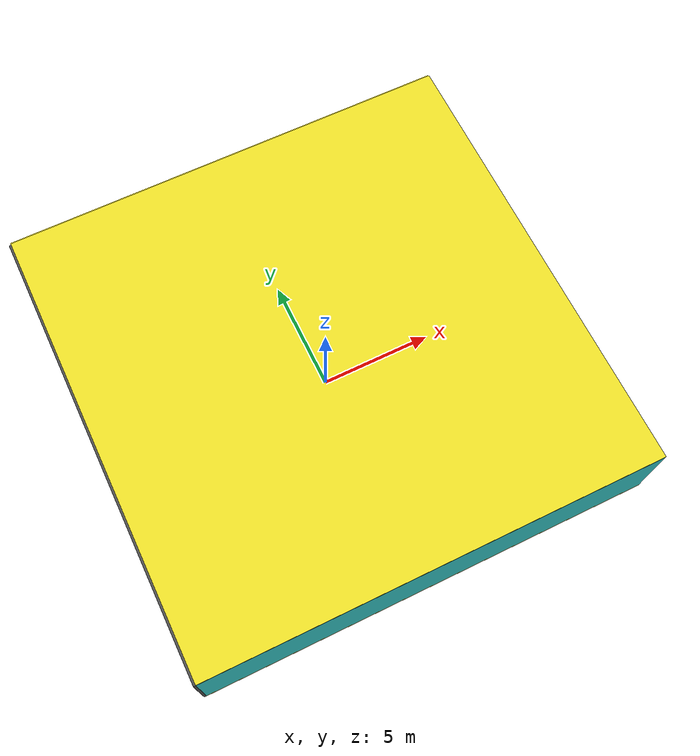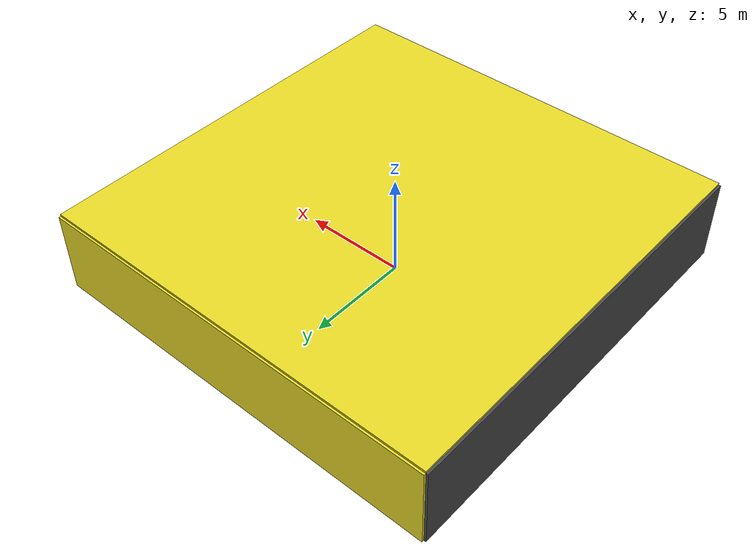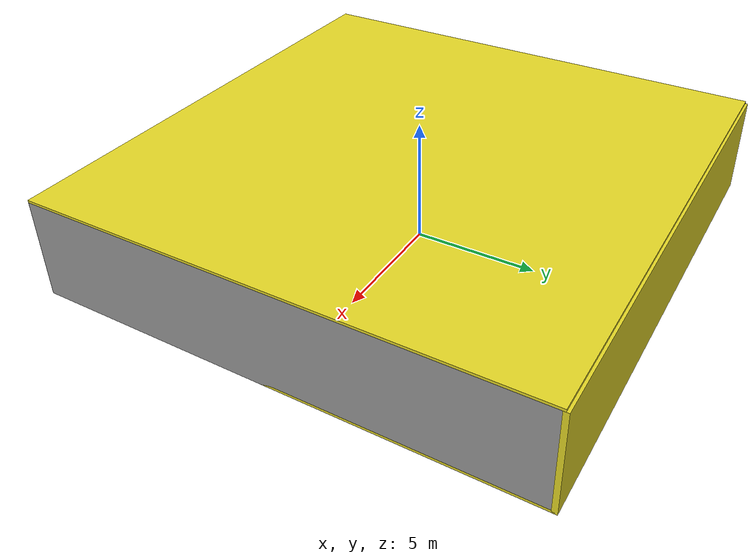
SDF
<sdf version="1.4">
 <world name="default">
  <physics type="ode">
   <max_step_size>0.001</max_step_size>
   <real_time_factor>1</real_time_factor>
   <real_time_update_rate>1000</real_time_update_rate>
   <gravity>0 0 -9.8</gravity>
  </physics>
  <scene><ambient>0.4 0.4 0.4 1</ambient><background>0.7 0.7 0.7 1</background><shadows>1</shadows></scene>
  <model name="Surrounding">
   <static>1</static>
   <link name="Ceiling">
    <collision name="Ceiling_Collision"><geometry><box><size>20 20 0.1</size></box></geometry></collision>
    <visual name="Ceiling_Visual">
     <geometry><box><size>20 20 0.1</size></box></geometry>
     <material>
      <script><uri>file://media/materials/scripts/gazebo.material</uri><name>Gazebo/YellowGlow</name></script>
     </material>
    </visual>
    <pose>0 0 4.05 0 0 0</pose>
   </link>
   <link name="Wall_South">
    <collision name="Wall_South_Collision">
     <geometry><box><size>20 0 4</size></box></geometry>
     <pose>0 0 2 0 -0 0</pose>
    </collision>
    <visual name="Wall_South_Visual">
     <pose>0 0 2 0 -0 0</pose>
     <geometry><box><size>20 0 4</size></box></geometry>
     <material>
      <script><uri>file://media/materials/scripts/gazebo.material</uri><name>Gazebo/Turquoise</name></script>
     </material>
    </visual>
    <velocity_decay><linear>0</linear><angular>0</angular></velocity_decay>
    <pose>0 -10 0 0 -0 0</pose>
   </link>
   <link name="Wall_East">
    <collision name="Wall_21_Collision">
     <geometry><box><size>20 0 4</size></box></geometry>
     <pose>0 0 2 0 -0 0</pose>
    </collision>
    <visual name="Wall_21_Visual">
     <pose>0 0 2 0 -0 0</pose>
     <geometry><box><size>20 0 4</size></box></geometry>
     <material>
      <script><uri>file://media/materials/scripts/gazebo.material</uri><name>Gazebo/GreyGradientSky</name></script>
     </material>
    </visual>
    <velocity_decay><linear>0</linear><angular>0</angular></velocity_decay>
    <pose>10 0 0 0 -0 1.5708</pose>
   </link>
   <link name="Wall_North">
    <collision name="Wall_22_Collision">
     <geometry><box><size>20 0.2 4</size></box></geometry>
     <pose>0 0 2 0 -0 0</pose>
    </collision>
    <visual name="Wall_22_Visual">
     <pose>0 0 2 0 -0 0</pose>
     <geometry><box><size>20 0.2 4</size></box></geometry>
     <material>
      <script><uri>file://media/materials/scripts/gazebo.material</uri><name>Gazebo/Yellow</name></script>
     </material>
    </visual>
    <velocity_decay><linear>0</linear><angular>0</angular></velocity_decay>
    <pose>0 10 0 0 -0 0</pose>
   </link>
   <link name="Wall_West">
    <collision name="Wall_23_Collision">
     <geometry><box><size>20 0.2 4</size></box></geometry>
     <pose>0 0 2 0 -0 0</pose>
    </collision>
    <visual name="Wall_23_Visual">
     <pose>0 0 2 0 -0 0</pose>
     <geometry><box><size>20 0.2 4</size></box></geometry>
     <material>
      <script><uri>file://media/materials/scripts/gazebo.material</uri><name>Gazebo/Road</name></script>
     </material>
    </visual>
    <velocity_decay><linear>0</linear><angular>0</angular></velocity_decay>
    <pose>-10 0 0 0 0 -1.5708</pose>
   </link>
   <link name="Ground_link">
    <collision name="collision">
     <pose>0 0 .05 0 -0 0</pose>
     <geometry><box><size>20 20 0.1</size></box></geometry>
    </collision>
    <visual name="visual">
     <pose>0 0 .05 0 -0 0</pose>
     <geometry><box><size>20 20 0.1</size></box></geometry>
     <material>
      <script><uri>file://media/materials/scripts/gazebo.material</uri><name>Gazebo/Yellow</name></script>
     </material>
    </visual>
   </link>
   <static>1</static>
  </model>
  <spherical_coordinates>
   <surface_model>EARTH_WGS84</surface_model>
   <latitude_deg>0</latitude_deg>
   <longitude_deg>0</longitude_deg>
   <elevation>0</elevation>
   <heading_deg>0</heading_deg>
  </spherical_coordinates>
  <light name="lightball_0" type="diffuse">
   <diffuse>0.8 0.8 0.8 1</diffuse>
   <specular>0.2 0.2 0.2 1</specular>
   <attenuation>
    <range>100</range>
    <constant>0.7</constant>
    <linear>0.01</linear>
    <quadratic>0.001</quadratic>
   </attenuation>
   <direction>-0.5 0.1 -0.9</direction>
   <pose>9.04214648928 4.56827167518 3.49166368231 0 0 0</pose>
  </light>
  <light name="lightball_1" type="diffuse">
   <diffuse>0.8 0.8 0.8 1</diffuse>
   <specular>0.2 0.2 0.2 1</specular>
   <attenuation>
    <range>100</range>
    <constant>0.7</constant>
    <linear>0.01</linear>
    <quadratic>0.001</quadratic>
   </attenuation>
   <direction>-0.5 0.1 -0.9</direction>
   <pose>-4.44160127958 6.92893581415 3.18219025641 0 0 0</pose>
  </light>
  <light name="lightball_2" type="diffuse">
   <diffuse>0.8 0.8 0.8 1</diffuse>
   <specular>0.2 0.2 0.2 1</specular>
   <attenuation>
    <range>100</range>
    <constant>0.7</constant>
    <linear>0.01</linear>
    <quadratic>0.001</quadratic>
   </attenuation>
   <direction>-0.5 0.1 -0.9</direction>
   <pose>9.58913854631 -9.93420621457 1.99117371041 0 0 0</pose>
  </light>
  <light name="lightball_3" type="diffuse">
   <diffuse>0.8 0.8 0.8 1</diffuse>
   <specular>0.2 0.2 0.2 1</specular>
   <attenuation>
    <range>100</range>
    <constant>0.7</constant>
    <linear>0.01</linear>
    <quadratic>0.001</quadratic>
   </attenuation>
   <direction>-0.5 0.1 -0.9</direction>
   <pose>-1.44058065655 4.67276409381 1.5553754296 0 0 0</pose>
  </light>
  <light name="lightball_4" type="diffuse">
   <diffuse>0.8 0.8 0.8 1</diffuse>
   <specular>0.2 0.2 0.2 1</specular>
   <attenuation>
    <range>100</range>
    <constant>0.7</constant>
    <linear>0.01</linear>
    <quadratic>0.001</quadratic>
   </attenuation>
   <direction>-0.5 0.1 -0.9</direction>
   <pose>-2.64115502291 -8.89456337252 1.11013571722 0 0 0</pose>
  </light>
  <light name="lightball_5" type="diffuse">
   <diffuse>0.8 0.8 0.8 1</diffuse>
   <specular>0.2 0.2 0.2 1</specular>
   <attenuation>
    <range>100</range>
    <constant>0.7</constant>
    <linear>0.01</linear>
    <quadratic>0.001</quadratic>
   </attenuation>
   <direction>-0.5 0.1 -0.9</direction>
   <pose>-7.85485751569 5.54434465907 2.50246755108 0 0 0</pose>
  </light>
  <light name="lightball_6" type="diffuse">
   <diffuse>0.8 0.8 0.8 1</diffuse>
   <specular>0.2 0.2 0.2 1</specular>
   <attenuation>
    <range>100</range>
    <constant>0.7</constant>
    <linear>0.01</linear>
    <quadratic>0.001</quadratic>
   </attenuation>
   <direction>-0.5 0.1 -0.9</direction>
   <pose>3.02720585426 5.4638364318 1.93188350477 0 0 0</pose>
  </light>
  <light name="lightball_7" type="diffuse">
   <diffuse>0.8 0.8 0.8 1</diffuse>
   <specular>0.2 0.2 0.2 1</specular>
   <attenuation>
    <range>100</range>
    <constant>0.7</constant>
    <linear>0.01</linear>
    <quadratic>0.001</quadratic>
   </attenuation>
   <direction>-0.5 0.1 -0.9</direction>
   <pose>9.42950950442 4.95268675218 0.949586674615 0 0 0</pose>
  </light>
  <light name="lightball_8" type="diffuse">
   <diffuse>0.8 0.8 0.8 1</diffuse>
   <specular>0.2 0.2 0.2 1</specular>
   <attenuation>
    <range>100</range>
    <constant>0.7</constant>
    <linear>0.01</linear>
    <quadratic>0.001</quadratic>
   </attenuation>
   <direction>-0.5 0.1 -0.9</direction>
   <pose>-6.23842833402 5.04470894486 3.06132038865 0 0 0</pose>
  </light>
  <light name="lightball_9" type="diffuse">
   <diffuse>0.8 0.8 0.8 1</diffuse>
   <specular>0.2 0.2 0.2 1</specular>
   <attenuation>
    <range>100</range>
    <constant>0.7</constant>
    <linear>0.01</linear>
    <quadratic>0.001</quadratic>
   </attenuation>
   <direction>-0.5 0.1 -0.9</direction>
   <pose>-8.01264332334 5.79398859256 1.80545327671 0 0 0</pose>
  </light>
  <include>
   <uri>model://construction_cone</uri>
   <pose>-5.66309293461 -1.62223589019 0 0 0 2.83203036108</pose>
  </include>
  <include>
   <uri>model://construction_cone</uri>
   <pose>-2.36276779934 2.57598110769 0 0 0 1.04829395618</pose>
  </include>
  <include><uri>model://table</uri><pose>-1.31720640876 6.61599008847 0 0 0 0.657327362476</pose></include>
  <include>
   <uri>model://construction_cone</uri>
   <pose>2.09596082826 2.58589980575 0 0 0 2.11299804706</pose>
  </include>
  <include>
   <uri>model://robocup_3Dsim_goal</uri>
   <pose>1.47716008174 4.70955645881 0 0 0 2.99529787456</pose>
  </include>
  <include>
   <uri>model://construction_cone</uri>
   <pose>7.80595464477 2.69722580616 0 0 0 2.69543657713</pose>
  </include>
  <include>
   <uri>model://textured_shapes</uri>
   <pose>6.48541815145 7.01281728042 0 0 0 2.74197616237</pose>
  </include>
 </world>
</sdf>

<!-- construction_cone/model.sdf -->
<sdf version="1.5">
  <model name="Construction Cone">
    <link name="link">
      <collision name="collision">
        <geometry>
          <mesh>
            <scale>10 10 10</scale>
            <uri>file://isr-testbed/construction_cone/meshes/construction_cone.dae</uri>
          </mesh>
        </geometry>
      </collision>
      <visual name="visual">
        <geometry>
          <mesh>
            <scale>10 10 10</scale>
            <uri>file://isr-testbed/construction_cone/meshes/construction_cone.dae</uri>
          </mesh>
        </geometry>
      </visual>
    </link>
  </model>
</sdf>

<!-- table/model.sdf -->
<sdf version="1.5">
  <model name="table">
    <static>true</static>
    <link name="link">
      <collision name="surface">
        <pose>0 0 1.0 0 0 0</pose>
        <geometry>
          <box>
            <size>1.5 0.8 0.03</size>
          </box>
        </geometry>
        <surface>
          <friction>
            <ode>
              <mu>0.6</mu>
              <mu2>0.6</mu2>
            </ode>
          </friction>
        </surface>
      </collision>
      <visual name="visual1">
        <pose>0 0 1.0 0 0 0</pose>
        <geometry>
          <box>
            <size>1.5 0.8 0.03</size>
          </box>
        </geometry>
        <material>
          <script>
            <uri>model://media/materials/scripts/gazebo.material</uri>
            <name>Gazebo/Wood</name>
          </script>
        </material>
      </visual>
      <collision name="front_left_leg">
        <pose>0.68 0.38 0.5 0 0 0</pose>
        <geometry>
          <cylinder>
            <radius>0.02</radius>
            <length>1.0</length>
          </cylinder>
        </geometry>
      </collision>
      <visual name="front_left_leg">
        <pose>0.68 0.38 0.5 0 0 0</pose>
        <geometry>
          <cylinder>
            <radius>0.02</radius>
            <length>1.0</length>
          </cylinder>
        </geometry>
        <material>
          <script>
            <uri>model://media/materials/scripts/gazebo.material</uri>
            <name>Gazebo/Grey</name>
          </script>
        </material>
      </visual>
      <collision name="front_right_leg">
        <pose>0.68 -0.38 0.5 0 0 0</pose>
        <geometry>
          <cylinder>
            <radius>0.02</radius>
            <length>1.0</length>
          </cylinder>
        </geometry>
      </collision>
      <visual name="front_right_leg">
        <pose>0.68 -0.38 0.5 0 0 0</pose>
        <geometry>
          <cylinder>
            <radius>0.02</radius>
            <length>1.0</length>
          </cylinder>
        </geometry>
        <material>
          <script>
            <uri>model://media/materials/scripts/gazebo.material</uri>
            <name>Gazebo/Grey</name>
          </script>
        </material>
      </visual>
      <collision name="back_right_leg">
        <pose>-0.68 -0.38 0.5 0 0 0</pose>
        <geometry>
          <cylinder>
            <radius>0.02</radius>
            <length>1.0</length>
          </cylinder>
        </geometry>
      </collision>
      <visual name="back_right_leg">
        <pose>-0.68 -0.38 0.5 0 0 0</pose>
        <geometry>
          <cylinder>
            <radius>0.02</radius>
            <length>1.0</length>
          </cylinder>
        </geometry>
        <material>
          <script>
            <uri>model://media/materials/scripts/gazebo.material</uri>
            <name>Gazebo/Grey</name>
          </script>
        </material>
      </visual>
      <collision name="back_left_leg">
        <pose>-0.68 0.38 0.5 0 0 0</pose>
        <geometry>
          <cylinder>
            <radius>0.02</radius>
            <length>1.0</length>
          </cylinder>
        </geometry>
      </collision>
      <visual name="back_left_leg">
        <pose>-0.68 0.38 0.5 0 0 0</pose>
        <geometry>
          <cylinder>
            <radius>0.02</radius>
            <length>1.0</length>
          </cylinder>
        </geometry>
        <material>
          <script>
            <uri>model://media/materials/scripts/gazebo.material</uri>
            <name>Gazebo/Grey</name>
          </script>
        </material>
      </visual>
    </link>
  </model>
</sdf>

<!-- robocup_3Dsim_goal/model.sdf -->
<sdf version="1.5">
  <model name="robocup_3d_goal">
    <static>true</static>
    <link name="left_post">
      <pose>0 1.05 0.45 0 0 0</pose>
      <collision name="collision">
        <geometry>
          <cylinder>
            <radius>0.05</radius>
            <length>0.9</length>
          </cylinder>
        </geometry>
      </collision>
      <visual name="visual">
        <geometry>
          <cylinder>
            <radius>0.05</radius>
            <length>0.9</length>
          </cylinder>
        </geometry>
        <material>
          <script>
            <uri>file://media/materials/scripts/gazebo.material</uri>
            <name>Gazebo/ZincYellow</name>
          </script>
        </material>
      </visual>
    </link>
    <link name="left_support_horiz_lower">
      <pose>0.30 1.05 0.01 0 0 0</pose>
      <collision name="collision">
        <geometry>
          <box>
            <size>0.50 0.02 0.02</size>
          </box>
        </geometry>
      </collision>
      <visual name="visual">
        <geometry>
          <box>
            <size>0.50 0.02 0.02</size>
          </box>
        </geometry>
        <material>
          <script>
            <uri>file://media/materials/scripts/gazebo.material</uri>
            <name>Gazebo/White</name>
          </script>
        </material>
      </visual>
    </link>
    <link name="left_support_horiz_upper">
      <pose>0.30 1.05 0.79 0 0 0</pose>
      <collision name="collision">
        <geometry>
          <box>
            <size>0.50 0.02 0.02</size>
          </box>
        </geometry>
      </collision>
      <visual name="visual">
        <geometry>
          <box>
            <size>0.50 0.02 0.02</size>
          </box>
        </geometry>
        <material>
          <script>
            <uri>file://media/materials/scripts/gazebo.material</uri>
            <name>Gazebo/White</name>
          </script>
        </material>
      </visual>
    </link>
    <link name="left_support_vertical">
      <pose>0.56 1.05 0.4 0 1.5708 0</pose>
      <collision name="collision">
        <geometry>
          <box>
            <size>0.80 0.02 0.02</size>
          </box>
        </geometry>
      </collision>
      <visual name="visual">
        <geometry>
          <box>
            <size>0.80 0.02 0.02</size>
          </box>
        </geometry>
        <material>
          <script>
            <uri>file://media/materials/scripts/gazebo.material</uri>
            <name>Gazebo/White</name>
          </script>
        </material>
      </visual>
    </link>
    <link name="right_support_horiz_lower">
      <pose>0.30 -1.05 0.01 0 0 0</pose>
      <collision name="collision">
        <geometry>
          <box>
            <size>0.50 0.02 0.02</size>
          </box>
        </geometry>
      </collision>
      <visual name="visual">
        <geometry>
          <box>
            <size>0.50 0.02 0.02</size>
          </box>
        </geometry>
        <material>
          <script>
            <uri>file://media/materials/scripts/gazebo.material</uri>
            <name>Gazebo/White</name>
          </script>
        </material>
      </visual>
    </link>
    <link name="right_support_horiz_upper">
      <pose>0.30 -1.05 0.79 0 0 0</pose>
      <collision name="collision">
        <geometry>
          <box>
            <size>0.50 0.02 0.02</size>
          </box>
        </geometry>
      </collision>
      <visual name="visual">
        <geometry>
          <box>
            <size>0.50 0.02 0.02</size>
          </box>
        </geometry>
        <material>
          <script>
            <uri>file://media/materials/scripts/gazebo.material</uri>
            <name>Gazebo/White</name>
          </script>
        </material>
      </visual>
    </link>
    <link name="right_support_vertical">
      <pose>0.56 -1.05 0.4 0 1.5708 0</pose>
      <collision name="collision">
        <geometry>
          <box>
            <size>0.80 0.02 0.02</size>
          </box>
        </geometry>
      </collision>
      <visual name="visual">
        <geometry>
          <box>
            <size>0.80 0.02 0.02</size>
          </box>
        </geometry>
        <material>
          <script>
            <uri>file://media/materials/scripts/gazebo.material</uri>
            <name>Gazebo/White</name>
          </script>
        </material>
      </visual>
    </link>
    <link name="center_support_horiz_lower">
      <pose>0.56 0 0.01 0 1.5708 0</pose>
      <collision name="collision">
        <geometry>
          <box>
            <size>0.02 2.08 0.02</size>
          </box>
        </geometry>
      </collision>
      <visual name="visual">
        <geometry>
          <box>
            <size>0.02 2.08 0.02</size>
          </box>
        </geometry>
        <material>
          <script>
            <uri>file://media/materials/scripts/gazebo.material</uri>
            <name>Gazebo/White</name>
          </script>
        </material>
      </visual>
    </link>
    <link name="center_support_horiz_upper">
      <pose>0.56 0 0.79 0 1.5708 0</pose>
      <collision name="collision">
        <geometry>
          <box>
            <size>0.02 2.08 0.02</size>
          </box>
        </geometry>
      </collision>
      <visual name="visual">
        <geometry>
          <box>
            <size>0.02 2.08 0.02</size>
          </box>
        </geometry>
        <material>
          <script>
            <uri>file://media/materials/scripts/gazebo.material</uri>
            <name>Gazebo/White</name>
          </script>
        </material>
      </visual>
    </link>
    <link name="right_post">
      <pose>0 -1.05 0.45 0 0 0</pose>
      <collision name="collision">
        <geometry>
          <cylinder>
            <radius>0.05</radius>
            <length>0.9</length>
          </cylinder>
        </geometry>
      </collision>
      <visual name="visual">
        <geometry>
          <cylinder>
            <radius>0.05</radius>
            <length>0.9</length>
          </cylinder>
        </geometry>
        <material>
          <script>
            <uri>file://media/materials/scripts/gazebo.material</uri>
            <name>Gazebo/ZincYellow</name>
          </script>
        </material>
      </visual>
    </link>
    <link name="crossbar">
      <pose>0 0 0.85 1.57 1.57 0</pose>
      <collision name="collision">
        <geometry>
          <cylinder>
            <radius>0.05</radius>
            <length>2.0</length>
          </cylinder>
        </geometry>
      </collision>
      <visual name="visual">
        <geometry>
          <cylinder>
            <radius>0.05</radius>
            <length>2.0</length>
          </cylinder>
        </geometry>
        <material>
          <script>
            <uri>file://media/materials/scripts/gazebo.material</uri>
            <name>Gazebo/ZincYellow</name>
          </script>
        </material>
      </visual>
    </link>
    <link name="center_net">
      <pose>0.56 0 0.40 0 0 0</pose>
      <collision name="collision">
        <geometry>
          <box>
            <size>0.01 2.1 0.80</size>
          </box>
        </geometry>
      </collision>
      <visual name="visual">
        <geometry>
          <box>
            <size>0.01 2.1 0.80</size>
          </box>
        </geometry>
        <material>
          <script>
            <uri>model://../model_source/models/robocup09_spl_field/materials/scripts/</uri>
            <uri>model://../model_source/models/robocup09_spl_field/materials/textures/</uri>
            <name>RoboCup/Net</name>
          </script>
        </material>
      </visual>
    </link>
    <link name="left_net">
      <pose>0.30 1.05 0.40 0 0 0</pose>
      <collision name="collision">
        <geometry>
          <box>
            <size>0.50 0.01 0.76</size>
          </box>
        </geometry>
      </collision>
      <visual name="visual">
        <geometry>
          <box>
            <size>0.50 0.01 0.76</size>
          </box>
        </geometry>
        <material>
          <script>
            <uri>model://../model_source/models/robocup09_spl_field/materials/scripts/</uri>
            <uri>model://../model_source/models/robocup09_spl_field/materials/textures/</uri>
            <name>RoboCup/Net</name>
          </script>
        </material>
      </visual>
    </link>
    <link name="right_net">
      <pose>0.30 -1.05 0.40 0 0 0</pose>
      <collision name="collision">
        <geometry>
          <box>
            <size>0.50 0.01 0.76</size>
          </box>
        </geometry>
      </collision>
      <visual name="visual">
        <geometry>
          <box>
            <size>0.50 0.01 0.76</size>
          </box>
        </geometry>
        <material>
          <script>
            <uri>model://../model_source/models/robocup09_spl_field/materials/scripts/</uri>
            <uri>model://../model_source/models/robocup09_spl_field/materials/textures/</uri>
            <name>RoboCup/Net</name>
          </script>
        </material>
      </visual>
    </link>
  </model>
</sdf>

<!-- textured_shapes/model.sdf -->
<sdf version="1.6">
  <model name="textured_shapes">
    <pose>0 0 0.5 0 0 0</pose>
    <link name="box">
      <pose>0 -1.5 0 0 0 0</pose>
      <collision name="collision">
        <geometry>
          <box>
            <size>1 1 1</size>
          </box>
        </geometry>
      </collision>
      <visual name="visual">
        <geometry>
          <box>
            <size>1 1 1</size>
          </box>
        </geometry>
        <material>
          <script>
            <uri>model://../model_source/models/textured_shapes/materials/scripts</uri>
            <uri>model://../model_source/models/textured_shapes/materials/textures</uri>
            <name>TexturedShape/Squares</name>
          </script>
        </material>
      </visual>
    </link>
    <link name="sphere">
      <collision name="collision">
        <geometry>
          <sphere>
            <radius>0.5</radius>
          </sphere>
        </geometry>
      </collision>
      <visual name="visual">
        <geometry>
          <sphere>
            <radius>0.5</radius>
          </sphere>
        </geometry>
        <material>
          <script>
            <uri>model://../model_source/models/textured_shapes/materials/scripts</uri>
            <uri>model://../model_source/models/textured_shapes/materials/textures</uri>
            <name>TexturedShape/Squares</name>
          </script>
        </material>
      </visual>
    </link>
    <link name="cylinder">
      <pose>0 1.5 0 0 0 0</pose>
      <collision name="collision">
        <geometry>
          <cylinder>
            <radius>0.5</radius>
            <length>1</length>
          </cylinder>
        </geometry>
      </collision>
      <visual name="visual">
        <geometry>
          <cylinder>
            <radius>0.5</radius>
            <length>1</length>
          </cylinder>
        </geometry>
        <material>
          <script>
            <uri>model://../model_source/models/textured_shapes/materials/scripts</uri>
            <uri>model://../model_source/models/textured_shapes/materials/textures</uri>
            <name>TexturedShape/Squares</name>
          </script>
        </material>
      </visual>
    </link>
  </model>
</sdf>
